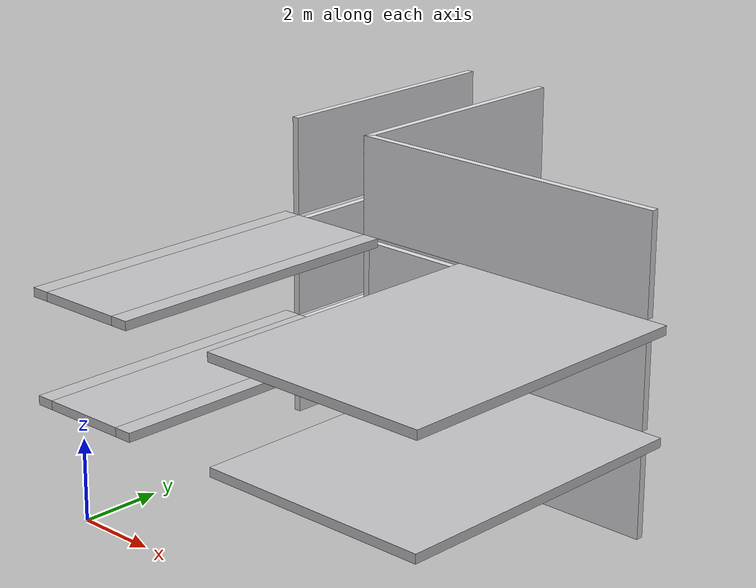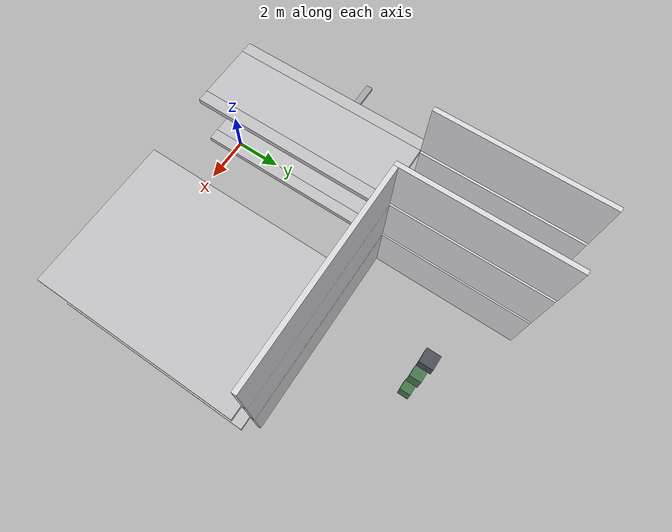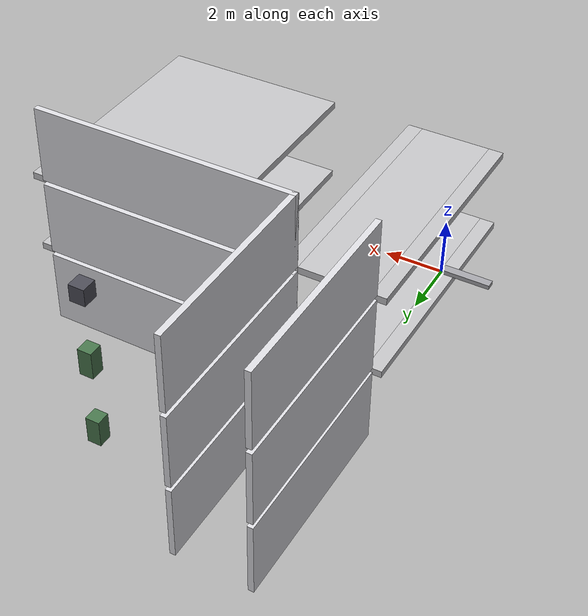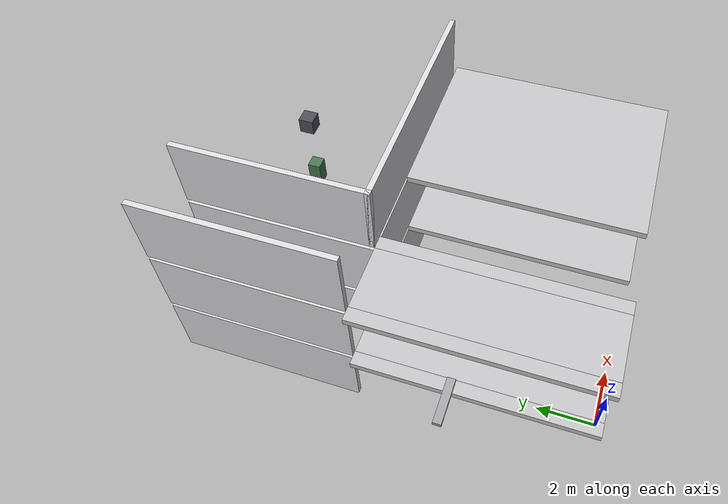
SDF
<sdf version="1.7">
 <model name="generated_building">
  <static>true</static>
  <link name="floor_0_room_0_corridor_wall_lower">
   <pose>-1.1900 11.0575 1.2250 0.0000 0.0000 0.0000</pose>
   <collision name="floor_0_room_0_corridor_wall_lower_collision">
    <geometry><box><size>0.1800 6.4150 2.4500</size></box></geometry>
   </collision>
   <visual name="floor_0_room_0_corridor_wall_lower_visual">
    <geometry><box><size>0.1800 6.4150 2.4500</size></box></geometry>
    <material><ambient>0.86 0.86 0.88 1</ambient><diffuse>0.86 0.86 0.88 1</diffuse></material>
   </visual>
   <gravity>false</gravity>
  </link>
  <link name="floor_0_room_1_corridor_wall_lower">
   <pose>1.1900 11.0575 1.2250 0.0000 0.0000 0.0000</pose>
   <collision name="floor_0_room_1_corridor_wall_lower_collision">
    <geometry><box><size>0.1800 6.4150 2.4500</size></box></geometry>
   </collision>
   <visual name="floor_0_room_1_corridor_wall_lower_visual">
    <geometry><box><size>0.1800 6.4150 2.4500</size></box></geometry>
    <material><ambient>0.86 0.86 0.88 1</ambient><diffuse>0.86 0.86 0.88 1</diffuse></material>
   </visual>
   <gravity>false</gravity>
  </link>
  <link name="floor_0_room_1_south_wall">
   <pose>5.3000 7.9400 1.2250 0.0000 0.0000 0.0000</pose>
   <collision name="floor_0_room_1_south_wall_collision">
    <geometry><box><size>8.4000 0.1800 2.4500</size></box></geometry>
   </collision>
   <visual name="floor_0_room_1_south_wall_visual">
    <geometry><box><size>8.4000 0.1800 2.4500</size></box></geometry>
    <material><ambient>0.86 0.86 0.88 1</ambient><diffuse>0.86 0.86 0.88 1</diffuse></material>
   </visual>
   <gravity>false</gravity>
  </link>
  <link name="floor_0_room_1_planter">
   <pose>5.3000 11.8075 0.4500 0.0000 0.0000 0.0000</pose>
   <collision name="floor_0_room_1_planter_collision">
    <geometry><box><size>0.4500 0.4500 0.9000</size></box></geometry>
   </collision>
   <visual name="floor_0_room_1_planter_visual">
    <geometry><box><size>0.4500 0.4500 0.9000</size></box></geometry>
    <material><ambient>0.28 0.46 0.30 1</ambient><diffuse>0.28 0.46 0.30 1</diffuse></material>
   </visual>
   <gravity>false</gravity>
  </link>
  <link name="slab_floor_1_2">
   <pose>-1.3300 3.9250 2.4900 0.0000 0.0000 0.0000</pose>
   <collision name="slab_floor_1_2_collision">
    <geometry><box><size>0.4600 7.8500 0.2200</size></box></geometry>
   </collision>
   <visual name="slab_floor_1_2_visual">
    <geometry><box><size>0.4600 7.8500 0.2200</size></box></geometry>
    <material><ambient>0.76 0.76 0.77 1</ambient><diffuse>0.76 0.76 0.77 1</diffuse></material>
   </visual>
   <gravity>false</gravity>
  </link>
  <link name="slab_floor_1_3">
   <pose>0.0000 3.9250 2.4900 0.0000 0.0000 0.0000</pose>
   <collision name="slab_floor_1_3_collision">
    <geometry><box><size>2.2000 7.8500 0.2200</size></box></geometry>
   </collision>
   <visual name="slab_floor_1_3_visual">
    <geometry><box><size>2.2000 7.8500 0.2200</size></box></geometry>
    <material><ambient>0.76 0.76 0.77 1</ambient><diffuse>0.76 0.76 0.77 1</diffuse></material>
   </visual>
   <gravity>false</gravity>
  </link>
  <link name="slab_floor_1_4">
   <pose>1.3300 3.9250 2.4900 0.0000 0.0000 0.0000</pose>
   <collision name="slab_floor_1_4_collision">
    <geometry><box><size>0.4600 7.8500 0.2200</size></box></geometry>
   </collision>
   <visual name="slab_floor_1_4_visual">
    <geometry><box><size>0.4600 7.8500 0.2200</size></box></geometry>
    <material><ambient>0.76 0.76 0.77 1</ambient><diffuse>0.76 0.76 0.77 1</diffuse></material>
   </visual>
   <gravity>false</gravity>
  </link>
  <link name="slab_floor_1_5">
   <pose>7.0700 3.9250 2.4900 0.0000 0.0000 0.0000</pose>
   <collision name="slab_floor_1_5_collision">
    <geometry><box><size>5.8600 7.8500 0.2200</size></box></geometry>
   </collision>
   <visual name="slab_floor_1_5_visual">
    <geometry><box><size>5.8600 7.8500 0.2200</size></box></geometry>
    <material><ambient>0.76 0.76 0.77 1</ambient><diffuse>0.76 0.76 0.77 1</diffuse></material>
   </visual>
   <gravity>false</gravity>
  </link>
  <link name="floor_1_room_0_corridor_wall_lower">
   <pose>-1.1900 11.0575 3.8250 0.0000 0.0000 0.0000</pose>
   <collision name="floor_1_room_0_corridor_wall_lower_collision">
    <geometry><box><size>0.1800 6.4150 2.4500</size></box></geometry>
   </collision>
   <visual name="floor_1_room_0_corridor_wall_lower_visual">
    <geometry><box><size>0.1800 6.4150 2.4500</size></box></geometry>
    <material><ambient>0.86 0.86 0.88 1</ambient><diffuse>0.86 0.86 0.88 1</diffuse></material>
   </visual>
   <gravity>false</gravity>
  </link>
  <link name="floor_1_room_1_corridor_wall_lower">
   <pose>1.1900 11.0575 3.8250 0.0000 0.0000 0.0000</pose>
   <collision name="floor_1_room_1_corridor_wall_lower_collision">
    <geometry><box><size>0.1800 6.4150 2.4500</size></box></geometry>
   </collision>
   <visual name="floor_1_room_1_corridor_wall_lower_visual">
    <geometry><box><size>0.1800 6.4150 2.4500</size></box></geometry>
    <material><ambient>0.86 0.86 0.88 1</ambient><diffuse>0.86 0.86 0.88 1</diffuse></material>
   </visual>
   <gravity>false</gravity>
  </link>
  <link name="floor_1_room_1_south_wall">
   <pose>5.3000 7.9400 3.8250 0.0000 0.0000 0.0000</pose>
   <collision name="floor_1_room_1_south_wall_collision">
    <geometry><box><size>8.4000 0.1800 2.4500</size></box></geometry>
   </collision>
   <visual name="floor_1_room_1_south_wall_visual">
    <geometry><box><size>8.4000 0.1800 2.4500</size></box></geometry>
    <material><ambient>0.86 0.86 0.88 1</ambient><diffuse>0.86 0.86 0.88 1</diffuse></material>
   </visual>
   <gravity>false</gravity>
  </link>
  <link name="floor_1_room_1_planter">
   <pose>5.3000 11.8075 3.0500 0.0000 0.0000 0.0000</pose>
   <collision name="floor_1_room_1_planter_collision">
    <geometry><box><size>0.4500 0.4500 0.9000</size></box></geometry>
   </collision>
   <visual name="floor_1_room_1_planter_visual">
    <geometry><box><size>0.4500 0.4500 0.9000</size></box></geometry>
    <material><ambient>0.28 0.46 0.30 1</ambient><diffuse>0.28 0.46 0.30 1</diffuse></material>
   </visual>
   <gravity>false</gravity>
  </link>
  <link name="slab_floor_2_2">
   <pose>-1.3300 3.9250 5.0900 0.0000 0.0000 0.0000</pose>
   <collision name="slab_floor_2_2_collision">
    <geometry><box><size>0.4600 7.8500 0.2200</size></box></geometry>
   </collision>
   <visual name="slab_floor_2_2_visual">
    <geometry><box><size>0.4600 7.8500 0.2200</size></box></geometry>
    <material><ambient>0.76 0.76 0.77 1</ambient><diffuse>0.76 0.76 0.77 1</diffuse></material>
   </visual>
   <gravity>false</gravity>
  </link>
  <link name="slab_floor_2_3">
   <pose>0.0000 3.9250 5.0900 0.0000 0.0000 0.0000</pose>
   <collision name="slab_floor_2_3_collision">
    <geometry><box><size>2.2000 7.8500 0.2200</size></box></geometry>
   </collision>
   <visual name="slab_floor_2_3_visual">
    <geometry><box><size>2.2000 7.8500 0.2200</size></box></geometry>
    <material><ambient>0.76 0.76 0.77 1</ambient><diffuse>0.76 0.76 0.77 1</diffuse></material>
   </visual>
   <gravity>false</gravity>
  </link>
  <link name="slab_floor_2_4">
   <pose>1.3300 3.9250 5.0900 0.0000 0.0000 0.0000</pose>
   <collision name="slab_floor_2_4_collision">
    <geometry><box><size>0.4600 7.8500 0.2200</size></box></geometry>
   </collision>
   <visual name="slab_floor_2_4_visual">
    <geometry><box><size>0.4600 7.8500 0.2200</size></box></geometry>
    <material><ambient>0.76 0.76 0.77 1</ambient><diffuse>0.76 0.76 0.77 1</diffuse></material>
   </visual>
   <gravity>false</gravity>
  </link>
  <link name="slab_floor_2_5">
   <pose>7.0700 3.9250 5.0900 0.0000 0.0000 0.0000</pose>
   <collision name="slab_floor_2_5_collision">
    <geometry><box><size>5.8600 7.8500 0.2200</size></box></geometry>
   </collision>
   <visual name="slab_floor_2_5_visual">
    <geometry><box><size>5.8600 7.8500 0.2200</size></box></geometry>
    <material><ambient>0.76 0.76 0.77 1</ambient><diffuse>0.76 0.76 0.77 1</diffuse></material>
   </visual>
   <gravity>false</gravity>
  </link>
  <link name="floor_2_room_0_corridor_wall_lower">
   <pose>-1.1900 11.0575 6.4250 0.0000 0.0000 0.0000</pose>
   <collision name="floor_2_room_0_corridor_wall_lower_collision">
    <geometry><box><size>0.1800 6.4150 2.4500</size></box></geometry>
   </collision>
   <visual name="floor_2_room_0_corridor_wall_lower_visual">
    <geometry><box><size>0.1800 6.4150 2.4500</size></box></geometry>
    <material><ambient>0.86 0.86 0.88 1</ambient><diffuse>0.86 0.86 0.88 1</diffuse></material>
   </visual>
   <gravity>false</gravity>
  </link>
  <link name="floor_2_room_1_corridor_wall_lower">
   <pose>1.1900 11.0575 6.4250 0.0000 0.0000 0.0000</pose>
   <collision name="floor_2_room_1_corridor_wall_lower_collision">
    <geometry><box><size>0.1800 6.4150 2.4500</size></box></geometry>
   </collision>
   <visual name="floor_2_room_1_corridor_wall_lower_visual">
    <geometry><box><size>0.1800 6.4150 2.4500</size></box></geometry>
    <material><ambient>0.86 0.86 0.88 1</ambient><diffuse>0.86 0.86 0.88 1</diffuse></material>
   </visual>
   <gravity>false</gravity>
  </link>
  <link name="floor_2_room_1_south_wall">
   <pose>5.3000 7.9400 6.4250 0.0000 0.0000 0.0000</pose>
   <collision name="floor_2_room_1_south_wall_collision">
    <geometry><box><size>8.4000 0.1800 2.4500</size></box></geometry>
   </collision>
   <visual name="floor_2_room_1_south_wall_visual">
    <geometry><box><size>8.4000 0.1800 2.4500</size></box></geometry>
    <material><ambient>0.86 0.86 0.88 1</ambient><diffuse>0.86 0.86 0.88 1</diffuse></material>
   </visual>
   <gravity>false</gravity>
  </link>
  <link name="floor_2_room_1_chair_south">
   <pose>5.3000 11.8075 5.4800 0.0000 0.0000 0.0000</pose>
   <collision name="floor_2_room_1_chair_south_collision">
    <geometry><box><size>0.5000 0.5000 0.5500</size></box></geometry>
   </collision>
   <visual name="floor_2_room_1_chair_south_visual">
    <geometry><box><size>0.5000 0.5000 0.5500</size></box></geometry>
    <material><ambient>0.30 0.30 0.34 1</ambient><diffuse>0.30 0.30 0.34 1</diffuse></material>
   </visual>
   <gravity>false</gravity>
  </link>
  <link name="stair_flight_b_floor_1_step_0">
   <pose>-2.4850 4.5200 3.9650 0.0000 0.0000 0.0000</pose>
   <collision name="stair_flight_b_floor_1_step_0_collision">
    <geometry><box><size>1.4300 0.2600 0.1300</size></box></geometry>
   </collision>
   <visual name="stair_flight_b_floor_1_step_0_visual">
    <geometry><box><size>1.4300 0.2600 0.1300</size></box></geometry>
    <material><ambient>0.64 0.64 0.66 1</ambient><diffuse>0.64 0.64 0.66 1</diffuse></material>
   </visual>
   <gravity>false</gravity>
  </link>
 </model>
</sdf>
